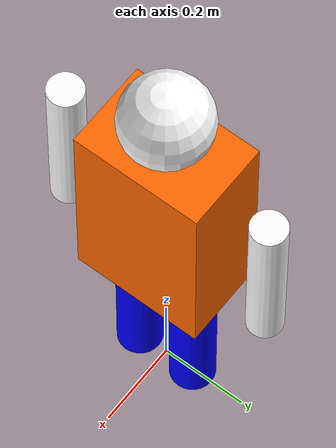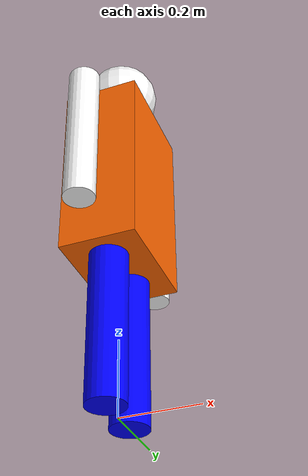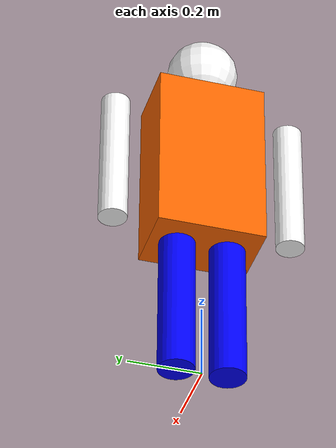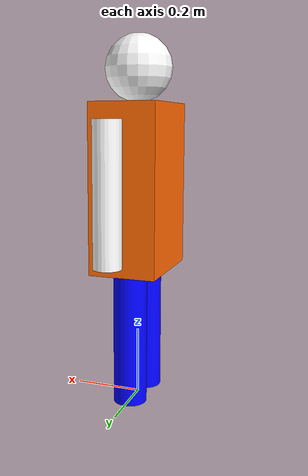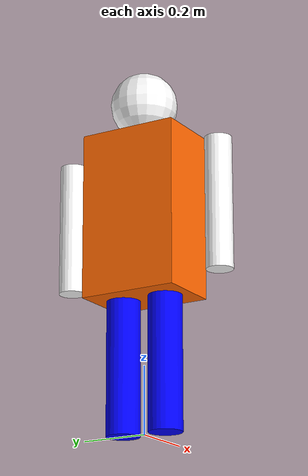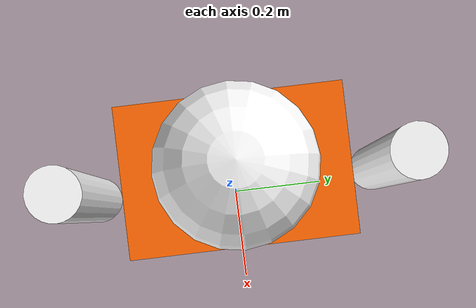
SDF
<?xml version="1.0" ?>
<sdf version="1.6">
  <model name="person_simple">
    <static>true</static>
    <!-- Rotate person 90° to face robot and lower slightly -->
    <pose>0 0 -0.25 0 0 1.57</pose>

    <!-- Torso (hi-viz orange box) -->
    <link name="torso">
      <pose>0 0 0.9 0 0 0</pose>
      <visual name="torso_visual">
        <geometry>
          <box>
            <size>0.3 0.2 0.5</size>
          </box>
        </geometry>
        <material>
          <ambient>1.0 0.4 0.0 1</ambient>
          <diffuse>1.0 0.4 0.0 1</diffuse>
        </material>
      </visual>
      <collision name="torso_collision">
        <geometry>
          <box>
            <size>0.3 0.2 0.5</size>
          </box>
        </geometry>
      </collision>
    </link>

    <!-- Head -->
    <link name="head">
      <pose>0 0 1.25 0 0 0</pose>
      <visual name="head_visual">
        <geometry>
          <sphere>
            <radius>0.1</radius>
          </sphere>
        </geometry>
        <material>
          <ambient>1 1 1 1</ambient>
          <diffuse>1 1 1 1</diffuse>
        </material>
      </visual>
      <collision name="head_collision">
        <geometry>
          <sphere>
            <radius>0.1</radius>
          </sphere>
        </geometry>
      </collision>
    </link>

    <!-- Left leg -->
    <link name="leg_left">
      <pose>0.07 0 0.5 0 0 0</pose>
      <visual name="leg_left_visual">
        <geometry>
          <cylinder>
            <radius>0.05</radius>
            <length>0.5</length>
          </cylinder>
        </geometry>
        <material>
          <ambient>0 0 1 1</ambient>
          <diffuse>0 0 1 1</diffuse>
        </material>
      </visual>
      <collision name="leg_left_collision">
        <geometry>
          <cylinder>
            <radius>0.05</radius>
            <length>0.5</length>
          </cylinder>
        </geometry>
      </collision>
    </link>

    <!-- Right leg -->
    <link name="leg_right">
      <pose>-0.07 0 0.5 0 0 0</pose>
      <visual name="leg_right_visual">
        <geometry>
          <cylinder>
            <radius>0.05</radius>
            <length>0.5</length>
          </cylinder>
        </geometry>
        <material>
          <ambient>0 0 1 1</ambient>
          <diffuse>0 0 1 1</diffuse>
        </material>
      </visual>
      <collision name="leg_right_collision">
        <geometry>
          <cylinder>
            <radius>0.05</radius>
            <length>0.5</length>
          </cylinder>
        </geometry>
      </collision>
    </link>

    <!-- Left arm -->
    <link name="arm_left">
      <pose>0.25 0 0.9 0 0 1.57</pose>
      <visual name="arm_left_visual">
        <geometry>
          <cylinder>
            <radius>0.04</radius>
            <length>0.4</length>
          </cylinder>
        </geometry>
        <material>
          <ambient>1 1 1 1</ambient>
          <diffuse>1 1 1 1</diffuse>
        </material>
      </visual>
      <collision name="arm_left_collision">
        <geometry>
          <cylinder>
            <radius>0.04</radius>
            <length>0.4</length>
          </cylinder>
        </geometry>
      </collision>
    </link>

    <!-- Right arm -->
    <link name="arm_right">
      <pose>-0.25 0 0.9 0 0 1.57</pose>
      <visual name="arm_right_visual">
        <geometry>
          <cylinder>
            <radius>0.04</radius>
            <length>0.4</length>
          </cylinder>
        </geometry>
        <material>
          <ambient>1 1 1 1</ambient>
          <diffuse>1 1 1 1</diffuse>
        </material>
      </visual>
      <collision name="arm_right_collision">
        <geometry>
          <cylinder>
            <radius>0.04</radius>
            <length>0.4</length>
          </cylinder>
        </geometry>
      </collision>
    </link>

  </model>
</sdf>
